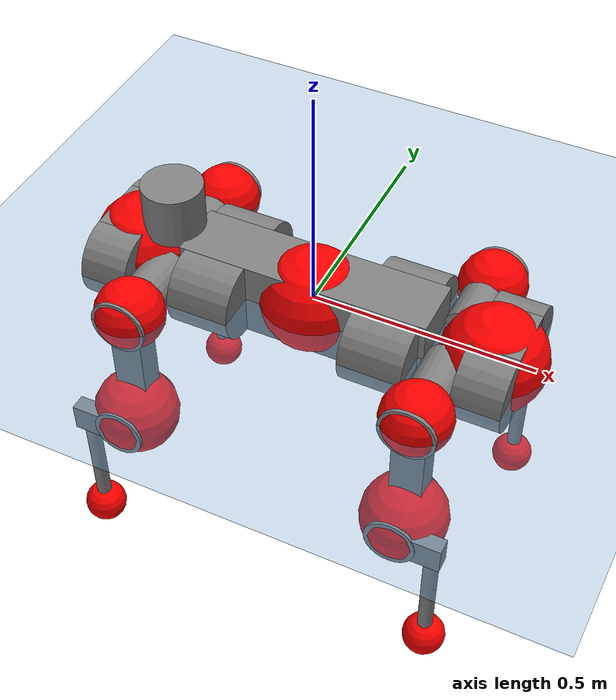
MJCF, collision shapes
<mujoco model="anymal_c">
  <compiler angle="radian" assetdir="assets" balanceinertia="true" inertiafromgeom="false"/>

  <option timestep="0.005" density="1.2" viscosity="2e-05"/>

  <size nkey="1"/>

  <visual>
    <quality shadowsize="8192"/>
    <map shadowclip="0.5"/>
  </visual>

  <default>
    <default class="/">
      <material specular="0" shininess="0.25"/>
      <geom contype="0" conaffinity="0" group="1" solref="-1000 -80"/>
      <site size="0.01 0.005 0.005" group="5"/>
      <general forcelimited="true" forcerange="-80 80" biastype="affine" gainprm="80" biasprm="0 -80 -2"/>
      <default class="anymal_c">
        <joint armature="0.01" damping="0.01" frictionloss="0.1"/>
        <default class="visual">
          <geom type="mesh" group="2"/>
          <default class="visual_zflip"/>
        </default>
        <default class="collision">
          <geom type="cylinder" group="3"/>
          <default class="foot">
            <geom size="0.03 0 0" type="sphere" condim="6" priority="1" friction="0.8 0.02 0.01" solimp="0.015 1 0.03"/>
          </default>
        </default>
      </default>
      <default class="reward_collision_sphere">
        <geom group="5" rgba="1 0 0 1"/>
      </default>
    </default>
  </default>

  <asset>
    <texture type="skybox" colorspace="auto" name="//unnamed_texture_0" builtin="gradient" rgb1="0.95 0.95 0.95" rgb2="0.95 0.95 0.95" width="100" height="600"/>
    <texture type="2d" colorspace="auto" name="texplane" builtin="checker" rgb1="0.345 0.575 0.748" rgb2="0.345 0.575 0.748" markrgb="1 1 1" width="512" height="512"/>
    <texture type="2d" colorspace="linear" name="base" file="base.png"/>
    <texture type="2d" colorspace="linear" name="top_shell" file="top_shell.png"/>
    <texture type="2d" colorspace="linear" name="bottom_shell" file="bottom_shell.png"/>
    <texture type="2d" colorspace="linear" name="remote" file="remote.png"/>
    <texture type="2d" colorspace="linear" name="hatch" file="hatch.png"/>
    <texture type="2d" colorspace="linear" name="handle" file="handle.png"/>
    <texture type="2d" colorspace="linear" name="face" file="face.png"/>
    <texture type="2d" colorspace="linear" name="battery" file="battery.png"/>
    <texture type="2d" colorspace="linear" name="lidar_cage" file="lidar_cage.png"/>
    <texture type="2d" colorspace="linear" name="depth_camera" file="depth_camera.png"/>
    <texture type="2d" colorspace="linear" name="wide_angle_camera" file="wide_angle_camera.png"/>
    <texture type="2d" colorspace="linear" name="lidar" file="lidar.png"/>
    <texture type="2d" colorspace="linear" name="drive" file="drive.png"/>
    <texture type="2d" colorspace="linear" name="hip_l" file="hip_l.png"/>
    <texture type="2d" colorspace="linear" name="shank_l" file="shank_l.png"/>
    <texture type="2d" colorspace="linear" name="foot" file="foot.png"/>
    <texture type="2d" colorspace="linear" name="thigh" file="thigh.png"/>
    <texture type="2d" colorspace="linear" name="shank_r" file="shank_r.png"/>
    <texture type="2d" colorspace="linear" name="hip_r" file="hip_r.png"/>
    <material name="MatPlane" class="/" texture="texplane" texuniform="true" texrepeat="2 2" specular="0.9" shininess="0.5"/>
    <material name="black_plastic" class="/" rgba="0.007 0.007 0.007 1"/>
    <material name="green" class="/" rgba="0.052 0.178 0.033 1"/>
    <material name="red" class="/" rgba="0.178 0.006 0.005 1"/>
    <material name="yellow" class="/" rgba="0.178 0.119 0.006 1"/>
    <material name="lwl" class="/" rgba="0.8 0.8 0.8 1"/>
    <material name="base" class="/" texture="base"/>
    <material name="top_shell" class="/" texture="top_shell"/>
    <material name="bottom_shell" class="/" texture="bottom_shell"/>
    <material name="hip_l" class="/" texture="hip_l"/>
    <material name="thigh" class="/" texture="thigh"/>
    <material name="shank_l" class="/" texture="shank_l"/>
    <material name="foot" class="/" texture="foot"/>
    <material name="hip_r" class="/" texture="hip_r"/>
    <material name="shank" class="/" texture="shank_r"/>
    <material name="hatch" class="/" texture="hatch"/>
    <material name="remote" class="/" texture="remote"/>
    <material name="handle" class="/" texture="handle"/>
    <material name="face" class="/" texture="face"/>
    <material name="depth_camera" class="/" texture="depth_camera"/>
    <material name="wide_angle_camera" class="/" texture="wide_angle_camera"/>
    <material name="battery" class="/" texture="battery"/>
    <material name="lidar_cage" class="/" texture="lidar_cage"/>
    <material name="lidar" class="/" texture="lidar"/>
    <material name="drive" class="/" texture="drive"/>
    <mesh name="base_0" class="/" file="base_0.obj"/>
    <mesh name="base_1" class="/" file="base_1.obj"/>
    <mesh name="base_2" class="/" file="base_2.obj"/>
    <mesh name="base_3" class="/" file="base_3.obj"/>
    <mesh name="base_4" class="/" file="base_4.obj"/>
    <mesh name="base_5" class="/" file="base_5.obj"/>
    <mesh name="top_shell" class="/" file="top_shell.obj"/>
    <mesh name="bottom_shell" class="/" file="bottom_shell.obj"/>
    <mesh name="remote" class="/" file="remote.obj"/>
    <mesh name="handle" class="/" file="handle.obj"/>
    <mesh name="face" class="/" file="face.obj"/>
    <mesh name="wide_angle_camera" class="/" file="wide_angle_camera.obj"/>
    <mesh name="depth_camera" class="/" file="depth_camera.obj"/>
    <mesh name="battery" class="/" file="battery.obj"/>
    <mesh name="lidar_cage" class="/" file="lidar_cage.obj"/>
    <mesh name="lidar" class="/" file="lidar.obj"/>
    <mesh name="drive" class="/" file="drive.obj"/>
    <mesh name="hip_l" class="/" file="hip_l.obj"/>
    <mesh name="thigh" class="/" file="thigh.obj"/>
    <mesh name="shank_l" class="/" file="shank_l.obj"/>
    <mesh name="foot" class="/" file="foot.obj"/>
    <mesh name="hip_r" class="/" file="hip_r.obj"/>
    <mesh name="hatch" class="/" file="hatch.obj"/>
    <mesh name="shank_r" class="/" file="shank_r.obj"/>
  </asset>

  <worldbody>
    <geom name="floor" class="/" size="100 100 0.125" type="plane" group="0" material="MatPlane"/>
    <light name="toplight_shadow" class="/" pos="0 0 5" dir="0.0990148 0.0990148 -0.990148" type="directional" ambient="0.04 0.04 0.04" diffuse="0.55 0.55 0.55" specular="0.12 0.12 0.12"/>
    <light name="toplight_fill" class="/" pos="0 0 5" dir="0.0990148 0.0990148 -0.990148" type="directional" castshadow="false" ambient="0.04 0.04 0.04" diffuse="0.3 0.3 0.3" specular="0.08 0.08 0.08"/>
    <body name="trunk" childclass="anymal_c" pos="1.46324e-05 -9.02912e-05 -0.00276273" quat="1 -0.000285767 -2.36398e-05 6.85298e-05">
      <inertial pos="0.00113734 0.00140445 0.0520135" quat="0.499164 0.500219 0.500364 0.500252" mass="17.0309" diaginertia="0.39681 0.627184 0.214207"/>
      <joint name="//unnamed_joint_0" type="free" armature="0" damping="0" frictionloss="0"/>
      <geom name="//unnamed_geom_1" class="visual" material="green" mesh="base_0"/>
      <geom name="//unnamed_geom_2" class="visual" material="yellow" mesh="base_1"/>
      <geom name="//unnamed_geom_3" class="visual" material="red" mesh="base_2"/>
      <geom name="//unnamed_geom_4" class="visual" material="black_plastic" mesh="base_3"/>
      <geom name="//unnamed_geom_5" class="visual" material="lwl" mesh="base_4"/>
      <geom name="//unnamed_geom_6" class="visual" material="base" mesh="base_5"/>
      <geom name="trunk_1" class="collision" size="0.282637 0.0682227 0.0877149" type="box"/>
      <geom name="trunk_2" class="collision" size="0.0877149 0.0706592" pos="0.198068 0.0707651 0" quat="0.707107 0 0.707107 0"/>
      <geom name="trunk_3" class="collision" size="0.0877149 0.0706592" pos="-0.198068 0.0707651 0" quat="0.707107 0 0.707107 0"/>
      <geom name="trunk_4" class="collision" size="0.0877149 0.0706592" pos="0.198068 -0.0707651 0" quat="0.707107 0 0.707107 0"/>
      <geom name="trunk_5" class="collision" size="0.0877149 0.0706592" pos="-0.198068 -0.0707651 0" quat="0.707107 0 0.707107 0"/>
      <geom name="//unnamed_geom_12" class="visual" material="top_shell" mesh="top_shell"/>
      <geom name="//unnamed_geom_13" class="visual" material="bottom_shell" mesh="bottom_shell"/>
      <geom name="//unnamed_geom_14" class="visual" material="remote" mesh="remote"/>
      <geom name="//unnamed_geom_15" class="visual" material="handle" mesh="handle"/>
      <geom name="//unnamed_geom_16" class="visual" pos="0.377467 0 0" quat="1 0 0 0" material="face" mesh="face"/>
      <geom name="trunk_6" class="collision" size="0.0536036 0.0682227 0.0877149" pos="0.427553 0 0" type="box"/>
      <geom name="//unnamed_geom_18" class="collision" size="0.0877149 0.0536036" pos="0.427553 0.0707651 0" quat="0.707107 0 0.707107 0"/>
      <geom name="//unnamed_geom_19" class="collision" size="0.0877149 0.0536036" pos="0.427553 -0.0707651 0" quat="0.707107 0 0.707107 0"/>
      <geom name="//unnamed_geom_20" class="visual" pos="0.420408 0 -0.0299616" quat="0.965926 0 0.258819 0" material="depth_camera" mesh="depth_camera"/>
      <geom name="//unnamed_geom_21" class="visual" pos="0.467167 0 0.0150036" material="wide_angle_camera" mesh="wide_angle_camera"/>
      <geom name="//unnamed_geom_22" class="visual_zflip" pos="-0.377467 0 0" quat="0 0 0 1" material="face" mesh="face"/>
      <geom name="trunk_7" class="collision" size="0.0536036 0.0682227 0.0877149" pos="-0.427553 0 0" quat="0 0 0 1" type="box"/>
      <geom name="//unnamed_geom_24" class="collision" size="0.0877149 0.0536036" pos="-0.427553 -0.0707651 0" quat="0 -0.707107 0 0.707107"/>
      <geom name="//unnamed_geom_25" class="collision" size="0.0877149 0.0536036" pos="-0.427553 0.0707651 0" quat="0 -0.707107 0 0.707107"/>
      <geom name="//unnamed_geom_26" class="visual" pos="-0.420408 0 -0.0299616" quat="0 -0.258819 0 0.965926" material="depth_camera" mesh="depth_camera"/>
      <geom name="//unnamed_geom_27" class="visual_zflip" pos="-0.467167 0 0.0150036" quat="0 0 0 1" material="wide_angle_camera" mesh="wide_angle_camera"/>
      <geom name="//unnamed_geom_28" class="visual" material="battery" mesh="battery"/>
      <geom name="//unnamed_geom_29" class="visual" pos="0 0.0786153 0.0284191" quat="0.683013 -0.183013 0.183013 0.683013" material="depth_camera" mesh="depth_camera"/>
      <geom name="//unnamed_geom_30" class="visual" pos="0 -0.0786153 0.0284191" quat="0.683013 0.183013 0.183013 -0.683013" material="depth_camera" mesh="depth_camera"/>
      <geom name="//unnamed_geom_31" class="visual" pos="-0.331479 0 0.0736649" quat="1 0 0 0" material="lidar_cage" mesh="lidar_cage"/>
      <geom name="trunk_8" class="collision" size="0.0682227 0.0584766" pos="-0.331479 0 0.1338"/>
      <geom name="//unnamed_geom_33" class="visual" pos="-0.331479 3.93949e-05 0.142519" quat="0.707107 0 0 -0.707107" material="lidar" mesh="lidar"/>
      <geom name="//unnamed_geom_34" class="visual" pos="0.273106 0.105134 1.49841e-10" quat="0.258819 0.965926 0 0" material="drive" mesh="drive"/>
      <geom name="//unnamed_geom_35" class="visual" pos="0.273106 -0.105134 -1.49841e-10" quat="0.258819 -0.965926 0 0" material="drive" mesh="drive"/>
      <geom name="//unnamed_geom_36" class="visual" pos="-0.273106 0.105134 -1.49841e-10" quat="0 0 0.965926 -0.258819" material="drive" mesh="drive"/>
      <geom name="//unnamed_geom_37" class="visual" pos="-0.273106 -0.105134 1.49841e-10" quat="0 0 -0.965926 -0.258819" material="drive" mesh="drive"/>
      <geom name="//unnamed_geom_38" class="visual" pos="0.105636 0 0.0731638" quat="1 0 0 0" material="hatch" mesh="hatch"/>
      <geom name="//unnamed_geom_39" class="reward_collision_sphere" size="0.116953"/>
      <geom name="//unnamed_geom_40" class="reward_collision_sphere" size="0.116953" pos="0.409795 0 0"/>
      <geom name="//unnamed_geom_41" class="reward_collision_sphere" size="0.116953" pos="-0.409795 0 0"/>
      <site name="imu" pos="0.235119 -0.00529571 0.0560639" size="0.0097461"/>
      <camera name="track" pos="0 -2.02186 0" quat="0.707107 0.707107 0 0" mode="trackcom"/>
      <camera name="ego_camera" pos="0.409795 0 -0.0400898" quat="-0.5 -0.5 0.5 0.5"/>
      <body name="LF_HIP" pos="0.273777 0.103037 -0.00141142" quat="0.259197 0.965824 0.000323127 -0.000126457">
        <inertial pos="0.0495017 -0.0148099 -0.0108487" quat="-0.125751 0.70956 -0.136998 0.679664" mass="2.50746" diaginertia="0.00362225 0.00494189 0.0033917"/>
        <joint name="LF_HAA" pos="0 0 0" axis="0.999997 -0.00195983 -0.00159785" range="-0.764669 0.488087" armature="0.0112078" damping="0.023669" frictionloss="0.0861512"/>
        <geom name="//unnamed_geom_42" class="visual" pos="0 8.81446e-06 -1.44777e-06" quat="0.258819 -0.965926 0 0" material="hip_l" mesh="hip_l"/>
        <geom name="//unnamed_geom_43" class="visual" pos="0.0545483 -0.0674141 -0.0388573" quat="0.183013 -0.683013 0.683013 0.183013" material="drive" mesh="drive"/>
        <geom name="//unnamed_geom_44" class="collision" size="0.0487305 0.0682227" pos="0.0545483 -0.0120905 -0.00692049" quat="-0.353553 -0.612372 0.612372 -0.353553"/>
        <body name="LF_THIGH" pos="0.0551771 -0.0740294 -0.0400432" quat="0.183069 -0.682938 0.683071 0.183021">
          <inertial pos="0.0286634 -0.000404133 -0.248897" quat="0.992754 -0.00730841 -0.0832881 0.0863049" mass="2.7976" diaginertia="0.0188334 0.0317794 0.00407952"/>
          <joint name="LF_HFE" pos="0 0 0" axis="0.999944 -0.00477795 0.00948717" range="-3.19967 3.18468" armature="0.0101542" damping="0.00991092" frictionloss="0.0927541"/>
          <geom name="//unnamed_geom_45" class="visual" pos="-0.00199505 -3.14374e-06 0" quat="0.707107 0 0 -0.707107" material="thigh" mesh="thigh"/>
          <geom name="//unnamed_geom_46" class="collision" size="0.0633497 0.0389844" pos="0.0364263 0 0" quat="0.5 0.5 -0.5 -0.5"/>
          <geom name="//unnamed_geom_47" class="collision" size="0.0365479 0.0292383 0.137726" pos="0.0273197 0 -0.141631" quat="0.707107 0 0 -0.707107" type="box"/>
          <geom name="//unnamed_geom_48" class="visual" pos="0.0913388 0 -0.285639" quat="1 0 0 0" material="drive" mesh="drive"/>
          <geom name="//unnamed_geom_49" class="collision" size="0.0487305 0.0682227" pos="0.0275929 0 -0.285639" quat="0.707107 0 0.707107 0"/>
          <geom name="//unnamed_geom_50" class="reward_collision_sphere" size="0.0779688" pos="0.0227664 0 0"/>
          <body name="LF_SHANK" pos="0.0896913 0.00252813 -0.283171" quat="1 -0.000307088 -0.000484206 0.000603291">
            <inertial pos="0.0059575 -0.0618117 -0.0812108" quat="0.992932 -0.115951 -0.000981603 -0.0253259" mass="0.514203" diaginertia="0.00635338 0.00972044 0.00107986"/>
            <joint name="LF_KFE" pos="0 0 0" axis="0.999999 -0.00099415 -0.000234953" range="-3.15549 3.14319" armature="0.00872744" damping="0.0211277" frictionloss="0.0840021"/>
            <geom name="//unnamed_geom_51" class="visual" pos="-0.000650543 -0.00346873 0" quat="0.707107 0 0 -0.707107" material="shank_l" mesh="shank_l"/>
            <geom name="LF_kfe_act" class="collision" size="0.0584766 0.0194922" pos="0.0182131 0 0" quat="0.5 0.5 -0.5 -0.5"/>
            <geom name="//unnamed_geom_53" class="collision" size="0.0560391 0.0328931 0.0185176" pos="0.0182131 -0.0581275 0" quat="0.5 0.5 -0.5 -0.5" type="box"/>
            <geom name="//unnamed_geom_54" class="visual" pos="0.0118842 -0.0900291 -0.338728" quat="0.382683 0 0 -0.92388" material="foot" mesh="foot"/>
            <geom name="LF_calf" class="collision" size="0.0170557 0.137666" pos="0.0118841 -0.0889113 -0.169364" quat="0.707107 0 0 -0.707107"/>
            <geom name="LF_foot" class="foot" size="0.0312788" pos="0.0118841 -0.0889113 -0.316178" quat="0.707107 0 0 -0.707107"/>
            <geom name="//unnamed_geom_57" class="reward_collision_sphere" size="0.097461" pos="-0.0455328 0 0"/>
            <geom name="//unnamed_geom_58" class="reward_collision_sphere" size="0.0487305" pos="0.0118841 -0.0889113 -0.316178"/>
            <site name="LF_foot" class="foot" pos="0.0118841 -0.0889113 -0.316178" quat="0.707107 0 0 -0.707107" size="0.0097461"/>
          </body>
        </body>
      </body>
      <body name="RF_HIP" pos="0.275482 -0.108327 0.000109106" quat="0.258499 -0.966011 0.00121269 -5.0556e-05">
        <inertial pos="0.0512127 0.0155177 -0.00815313" quat="0.136841 0.679482 0.126225 0.70968" mass="2.55402" diaginertia="0.00362866 0.00490758 0.00332331"/>
        <joint name="RF_HAA" pos="0 0 0" axis="1 -0.000169772 0.000381806" range="-0.441035 0.687351" armature="0.00981824" damping="0.0153245" frictionloss="0.083632"/>
        <geom name="//unnamed_geom_59" class="visual" pos="0 -8.81439e-06 -1.44776e-06" quat="0.258819 0.965926 0 0" material="hip_r" mesh="hip_r"/>
        <geom name="//unnamed_geom_60" class="visual" pos="0.0545483 0.0674141 -0.0388573" quat="0.183013 0.683013 0.683013 -0.183013" material="drive" mesh="drive"/>
        <geom name="//unnamed_geom_61" class="collision" size="0.0487305 0.0682227" pos="0.0545483 0.0120905 -0.00692049" quat="-0.353553 0.612372 0.612372 0.353553"/>
        <body name="RF_THIGH" pos="0.0555252 0.0761715 -0.0434909" quat="0.182306 0.683651 0.682661 -0.182646">
          <inertial pos="0.027654 0.000564388 -0.24614" quat="0.992698 -0.00264704 -0.0808547 0.0894819" mass="2.77423" diaginertia="0.0187185 0.0309182 0.00426994"/>
          <joint name="RF_HFE" pos="0 0 0" axis="0.999983 -0.000397593 -0.00574932" stiffness="0.00644767" range="-3.13003 3.10587" armature="0.00962364" damping="0" frictionloss="0.0950214"/>
          <geom name="//unnamed_geom_62" class="visual" pos="-0.00199505 -3.14374e-06 0" quat="0.707107 0 0 -0.707107" material="thigh" mesh="thigh"/>
          <geom name="//unnamed_geom_63" class="collision" size="0.0633497 0.0389844" pos="0.0364263 0 0" quat="0.5 0.5 0.5 0.5"/>
          <geom name="//unnamed_geom_64" class="collision" size="0.0365479 0.0292383 0.137726" pos="0.0273197 0 -0.141631" quat="0.707107 0 0 0.707107" type="box"/>
          <geom name="//unnamed_geom_65" class="visual" pos="0.0913388 0 -0.285639" quat="1 0 0 0" material="drive" mesh="drive"/>
          <geom name="//unnamed_geom_66" class="collision" size="0.0487305 0.0682227" pos="0.0275929 0 -0.285639" quat="0.707107 0 0.707107 0"/>
          <geom name="//unnamed_geom_67" class="reward_collision_sphere" size="0.0779688" pos="0.0227664 0 0"/>
          <body name="RF_SHANK" pos="0.0930275 0.000714514 -0.283126" quat="1 -2.87965e-05 -8.3169e-05 5.58406e-05">
            <inertial pos="0.0032814 0.0614829 -0.0797884" quat="0.992249 0.12133 -0.00287285 0.0266846" mass="0.545945" diaginertia="0.00663193 0.00987192 0.00114485"/>
            <joint name="RF_KFE" pos="0 0 0" axis="0.999999 0.00138361 -6.45396e-05" range="-3.10926 3.09117" armature="0.00963155" damping="0.00629033" frictionloss="0.0947066"/>
            <geom name="//unnamed_geom_68" class="visual" pos="-0.00065054 0.00346872 0" quat="0.707107 0 0 0.707107" material="shank" mesh="shank_r"/>
            <geom name="RF_kfe_act" class="collision" size="0.0584766 0.0194922" pos="0.0182131 0 0" quat="0.5 0.5 0.5 0.5"/>
            <geom name="//unnamed_geom_70" class="collision" size="0.0560391 0.0328931 0.0185176" pos="0.0182131 0.0581275 0" quat="0.5 0.5 0.5 0.5" type="box"/>
            <geom name="//unnamed_geom_71" class="visual" pos="0.0118839 0.0900291 -0.338728" quat="0.382683 0 0 0.92388" material="foot" mesh="foot"/>
            <geom name="RF_calf" class="collision" size="0.0170557 0.137666" pos="0.0118841 0.0889113 -0.169364" quat="0.707107 0 0 0.707107"/>
            <geom name="RF_foot" class="foot" size="0.0282023" pos="0.0118841 0.0889113 -0.316178" quat="0.707107 0 0 0.707107"/>
            <geom name="//unnamed_geom_74" class="reward_collision_sphere" size="0.097461" pos="-0.0455328 0 0"/>
            <geom name="//unnamed_geom_75" class="reward_collision_sphere" size="0.0487305" pos="0.0118841 0.0889113 -0.316178"/>
            <site name="RF_foot" class="foot" pos="0.0118841 0.0889113 -0.316178" quat="0.707107 0 0 0.707107" size="0.0097461"/>
          </body>
        </body>
      </body>
      <body name="LH_HIP" pos="-0.272517 0.107691 -0.000202296" quat="0.000185174 0.000391224 0.965911 -0.258872">
        <inertial pos="0.0491606 0.0130858 -0.00870518" quat="0.134583 0.679162 0.127469 0.710195" mass="2.55799" diaginertia="0.00373895 0.00537009 0.00322339"/>
        <joint name="LH_HAA" pos="0 0 0" axis="0.999919 -0.00715057 0.0105449" range="-0.486314 0.672685" armature="0.0097201" damping="0" frictionloss="0.110502"/>
        <geom name="//unnamed_geom_76" class="visual" pos="0 -8.81439e-06 -1.44776e-06" quat="-0.258819 -0.965926 0 0" material="hip_r" mesh="hip_r"/>
        <geom name="//unnamed_geom_77" class="visual" pos="0.0545483 0.0674141 -0.0388573" quat="0.183013 0.683013 0.683013 -0.183013" material="drive" mesh="drive"/>
        <geom name="//unnamed_geom_78" class="collision" size="0.0487305 0.0682227" pos="0.0545483 0.0120905 -0.00692049" quat="-0.353553 0.612372 0.612372 0.353553"/>
        <body name="LH_THIGH" pos="0.0535235 0.0708636 -0.0429128" quat="0.184073 0.682353 0.683587 -0.182263">
          <inertial pos="0.02652 -0.00285054 -0.246262" quat="0.992131 0.00311046 -0.0820698 0.0945001" mass="2.80981" diaginertia="0.0193568 0.0310719 0.0044535"/>
          <joint name="LH_HFE" pos="0 0 0" axis="1 0.000177886 -0.000542357" stiffness="0.00849285" range="-3.13661 3.15021" armature="0.00952418" damping="0.00841085" frictionloss="0.0960135"/>
          <geom name="//unnamed_geom_79" class="visual" pos="-0.00199505 -3.14374e-06 0" quat="0.707107 0 0 -0.707107" material="thigh" mesh="thigh"/>
          <geom name="//unnamed_geom_80" class="collision" size="0.0633497 0.0389844" pos="0.0364263 0 0" quat="0.5 0.5 -0.5 -0.5"/>
          <geom name="//unnamed_geom_81" class="collision" size="0.0365479 0.0292383 0.137726" pos="0.0273197 0 -0.141631" quat="0.707107 0 0 -0.707107" type="box"/>
          <geom name="//unnamed_geom_82" class="visual" pos="0.0913388 0 -0.285639" quat="1 0 0 0" material="drive" mesh="drive"/>
          <geom name="//unnamed_geom_83" class="collision" size="0.0487305 0.0682227" pos="0.0275929 0 -0.285639" quat="0.707107 0 0.707107 0"/>
          <geom name="//unnamed_geom_84" class="reward_collision_sphere" size="0.0779688" pos="0.0227664 0 0"/>
          <body name="LH_SHANK" pos="0.0936809 -0.000515611 -0.286307" quat="0.999999 -0.000408925 -5.17109e-05 0.00103637">
            <inertial pos="0.00756905 0.0601117 -0.0836345" quat="0.992962 0.115743 -0.00102083 0.0250878" mass="0.53228" diaginertia="0.00626644 0.00998959 0.00113722"/>
            <joint name="LH_KFE" pos="0 0 0" axis="0.999966 0.00769574 -0.00304065" range="-3.14422 3.1375" armature="0.00942021" damping="0.0209103" frictionloss="0.109947"/>
            <geom name="//unnamed_geom_85" class="visual" pos="-0.00065054 0.00346872 0" quat="-0.707107 0 0 -0.707107" material="shank" mesh="shank_r"/>
            <geom name="LH_kfe_act" class="collision" size="0.0584766 0.0194922" pos="0.0182131 0 0" quat="0.5 0.5 -0.5 -0.5"/>
            <geom name="//unnamed_geom_87" class="collision" size="0.0560391 0.0328931 0.0185176" pos="0.0182131 0.0581275 0" quat="0.5 0.5 -0.5 -0.5" type="box"/>
            <geom name="//unnamed_geom_88" class="visual" pos="0.0118839 0.0900291 -0.338728" quat="-0.382683 0 0 -0.92388" material="foot" mesh="foot"/>
            <geom name="LH_calf" class="collision" size="0.0170557 0.137666" pos="0.0118841 0.0889113 -0.169364" quat="0.707107 0 0 -0.707107"/>
            <geom name="LH_foot" class="foot" size="0.0286295" pos="0.0118841 0.0889113 -0.316178" quat="0.707107 0 0 -0.707107"/>
            <geom name="//unnamed_geom_91" class="reward_collision_sphere" size="0.097461" pos="-0.0455328 0 0"/>
            <geom name="//unnamed_geom_92" class="reward_collision_sphere" size="0.0487305" pos="0.0118841 0.0889113 -0.316178"/>
            <site name="LH_foot" class="foot" pos="0.0118841 0.0889113 -0.316178" quat="0.707107 0 0 -0.707107" size="0.0097461"/>
          </body>
        </body>
      </body>
      <body name="RH_HIP" pos="-0.273427 -0.102502 -0.000459949" quat="-0.000951561 0.000667502 -0.965828 -0.259182">
        <inertial pos="0.0519451 -0.0129928 -0.0109555" quat="-0.130536 0.709269 -0.136835 0.679098" mass="2.45285" diaginertia="0.00366359 0.00484675 0.00322095"/>
        <joint name="RH_HAA" pos="0 0 0" axis="0.999942 0.00193254 -0.0106019" range="-0.766096 0.50914" armature="0.00865689" damping="0.00786778" frictionloss="0.111304"/>
        <geom name="//unnamed_geom_93" class="visual" pos="0 8.81446e-06 -1.44777e-06" quat="-0.258819 0.965926 0 0" material="hip_l" mesh="hip_l"/>
        <geom name="//unnamed_geom_94" class="visual" pos="0.0545483 -0.0674141 -0.0388573" quat="-0.183013 0.683013 -0.683013 -0.183013" material="drive" mesh="drive"/>
        <geom name="//unnamed_geom_95" class="collision" size="0.0487305 0.0682227" pos="0.0545483 -0.0120905 -0.00692049" quat="0.353553 0.612372 -0.612372 0.353553"/>
        <body name="RH_THIGH" pos="0.0550028 -0.0734137 -0.0428063" quat="-0.182985 0.683 -0.683041 -0.182981">
          <inertial pos="0.0283842 0.000438605 -0.243271" quat="0.994075 0.00313463 -0.0713593 0.0819308" mass="2.8135" diaginertia="0.0190622 0.031507 0.0042601"/>
          <joint name="RH_HFE" pos="0 0 0" axis="0.999907 -0.0128532 0.00464686" stiffness="0.0100368" range="-3.09595 3.10873" armature="0.0100541" damping="0.00979424" frictionloss="0.104323"/>
          <geom name="//unnamed_geom_96" class="visual" pos="-0.00199505 -3.14374e-06 0" quat="0.707107 0 0 -0.707107" material="thigh" mesh="thigh"/>
          <geom name="//unnamed_geom_97" class="collision" size="0.0633497 0.0389844" pos="0.0364263 0 0" quat="0.5 0.5 0.5 0.5"/>
          <geom name="//unnamed_geom_98" class="collision" size="0.0365479 0.0292383 0.137726" pos="0.0273197 0 -0.141631" quat="0.707107 0 0 0.707107" type="box"/>
          <geom name="//unnamed_geom_99" class="visual" pos="0.0913388 0 -0.285639" quat="1 0 0 0" material="drive" mesh="drive"/>
          <geom name="//unnamed_geom_100" class="collision" size="0.0487305 0.0682227" pos="0.0275929 0 -0.285639" quat="0.707107 0 0.707107 0"/>
          <geom name="//unnamed_geom_101" class="reward_collision_sphere" size="0.0779688" pos="0.0227664 0 0"/>
          <body name="RH_SHANK" pos="0.09007 -0.00236825 -0.283905" quat="0.999999 -0.000607618 0.000539029 -0.00115141">
            <inertial pos="0.00769192 -0.0620806 -0.0812536" quat="0.993023 -0.11501 0.00481106 -0.025572" mass="0.514994" diaginertia="0.00615383 0.00927768 0.00110021"/>
            <joint name="RH_KFE" pos="0 0 0" axis="0.99998 -0.00464868 -0.00433527" stiffness="0.00372603" range="-3.08338 3.17625" armature="0.0101317" damping="0.00890379" frictionloss="0.094891"/>
            <geom name="//unnamed_geom_102" class="visual" pos="-0.000650543 -0.00346873 0" quat="0.707107 0 0 -0.707107" material="shank_l" mesh="shank_l"/>
            <geom name="RH_kfe_act" class="collision" size="0.0584766 0.0194922" pos="0.0182131 0 0" quat="0.5 0.5 0.5 0.5"/>
            <geom name="//unnamed_geom_104" class="collision" size="0.0560391 0.0328931 0.0185176" pos="0.0182131 -0.0581275 0" quat="0.5 0.5 0.5 0.5" type="box"/>
            <geom name="//unnamed_geom_105" class="visual" pos="0.0118842 -0.0900291 -0.338728" quat="0.382683 0 0 -0.92388" material="foot" mesh="foot"/>
            <geom name="RH_calf" class="collision" size="0.0170557 0.137666" pos="0.0118841 -0.0889113 -0.169364" quat="0.707107 0 0 0.707107"/>
            <geom name="RH_foot" class="foot" size="0.0285656" pos="0.0118841 -0.0889113 -0.316178" quat="0.707107 0 0 0.707107"/>
            <geom name="//unnamed_geom_108" class="reward_collision_sphere" size="0.097461" pos="-0.0455328 0 0"/>
            <geom name="//unnamed_geom_109" class="reward_collision_sphere" size="0.0487305" pos="0.0118841 -0.0889113 -0.316178"/>
            <site name="RH_foot" class="foot" pos="0.0118841 -0.0889113 -0.316178" quat="0.707107 0 0 0.707107" size="0.0097461"/>
          </body>
        </body>
      </body>
    </body>
  </worldbody>

  <contact>
    <pair class="/" geom1="floor" geom2="LF_foot" name="//unnamed_contact_0"/>
    <pair class="/" geom1="floor" geom2="RF_foot" name="//unnamed_contact_1"/>
    <pair class="/" geom1="floor" geom2="LH_foot" name="//unnamed_contact_2"/>
    <pair class="/" geom1="floor" geom2="RH_foot" name="//unnamed_contact_3"/>
  </contact>

  <actuator>
    <general name="LF_HAA" class="/" joint="LF_HAA" forcerange="-70.7364 70.7364" gainprm="81.8001" biasprm="0 -81.8001 -2.07669"/>
    <general name="LF_HFE" class="/" joint="LF_HFE" forcerange="-76.123 76.123" gainprm="81.8001" biasprm="0 -81.8001 -2.07669"/>
    <general name="LF_KFE" class="/" joint="LF_KFE" forcerange="-80.3502 80.3502" gainprm="81.8001" biasprm="0 -81.8001 -2.07669"/>
    <general name="RF_HAA" class="/" joint="RF_HAA" forcerange="-75.7496 75.7496" gainprm="81.8001" biasprm="0 -81.8001 -2.07669"/>
    <general name="RF_HFE" class="/" joint="RF_HFE" forcerange="-85.8607 85.8607" gainprm="81.8001" biasprm="0 -81.8001 -2.07669"/>
    <general name="RF_KFE" class="/" joint="RF_KFE" forcerange="-71.1189 71.1189" gainprm="81.8001" biasprm="0 -81.8001 -2.07669"/>
    <general name="LH_HAA" class="/" joint="LH_HAA" forcerange="-86.6347 86.6347" gainprm="81.8001" biasprm="0 -81.8001 -2.07669"/>
    <general name="LH_HFE" class="/" joint="LH_HFE" forcerange="-78.4038 78.4038" gainprm="81.8001" biasprm="0 -81.8001 -2.07669"/>
    <general name="LH_KFE" class="/" joint="LH_KFE" forcerange="-71.1651 71.1651" gainprm="81.8001" biasprm="0 -81.8001 -2.07669"/>
    <general name="RH_HAA" class="/" joint="RH_HAA" forcerange="-75.7696 75.7696" gainprm="81.8001" biasprm="0 -81.8001 -2.07669"/>
    <general name="RH_HFE" class="/" joint="RH_HFE" forcerange="-79.2774 79.2774" gainprm="81.8001" biasprm="0 -81.8001 -2.07669"/>
    <general name="RH_KFE" class="/" joint="RH_KFE" forcerange="-77.4115 77.4115" gainprm="81.8001" biasprm="0 -81.8001 -2.07669"/>
  </actuator>

  <sensor>
    <gyro site="imu" name="imu_angular_velocity"/>
    <velocimeter site="imu" name="imu_linear_velocity"/>
    <framelinvel objtype="site" objname="LF_foot" name="LF_foot_global_linear_velocity"/>
    <framelinvel objtype="site" objname="RF_foot" name="RF_foot_global_linear_velocity"/>
    <framelinvel objtype="site" objname="LH_foot" name="LH_foot_global_linear_velocity"/>
    <framelinvel objtype="site" objname="RH_foot" name="RH_foot_global_linear_velocity"/>
  </sensor>

  <keyframe>
    <key name="home" qpos="0 0 0.55 1 0 0 0 0 0.4 -0.8 0 -0.4 0.8 0 -0.4 0.8 0 0.4 -0.8"/>
  </keyframe>
</mujoco>
